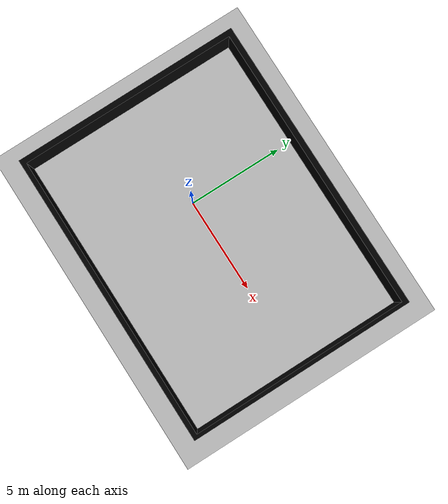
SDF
<?xml version='1.0' encoding='UTF-8'?>
<sdf version="1.4">
  <world name="default">
    <plugin filename="gz-sim-physics-system" name="gz::sim::systems::Physics"/>
    <plugin filename="gz-sim-user-commands-system" name="gz::sim::systems::UserCommands"/>
    <plugin filename="gz-sim-scene-broadcaster-system" name="gz::sim::systems::SceneBroadcaster"/>
    <plugin filename="gz-sim-contact-system" name="gz::sim::systems::Contact"/>
    <plugin filename="gz-sim-sensors-system" name="gz::sim::systems::Sensors">
      <render_engine>ogre</render_engine>
    </plugin>
    <include>
      <uri>model://ground_plane</uri>
    </include>
    <include>
      <uri>model://sun</uri>
    </include>
    <scene>
      <ambient>0.0 0.0 0.0 1.0</ambient>
      <shadows>0</shadows>
    </scene>
    <model name="my_mesh">
      <static>true</static>
      <link name="body">
        <visual name="visual">
          <pose frame="">-6.0 -6.0 1 0 0 0</pose>
          <geometry>
            <mesh>
              <uri>map.dae</uri>
            </mesh>
          </geometry>
        </visual>
        <collision name="collision1">
          <pose frame="">-6.0 -6.0 1 0 0 0</pose>
          <geometry>
            <mesh>
              <uri>map.dae</uri>
            </mesh>
          </geometry>
        </collision>
      </link>
    </model>
  </world>
</sdf>
